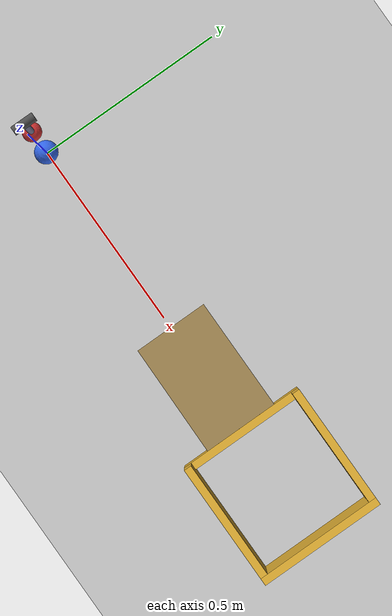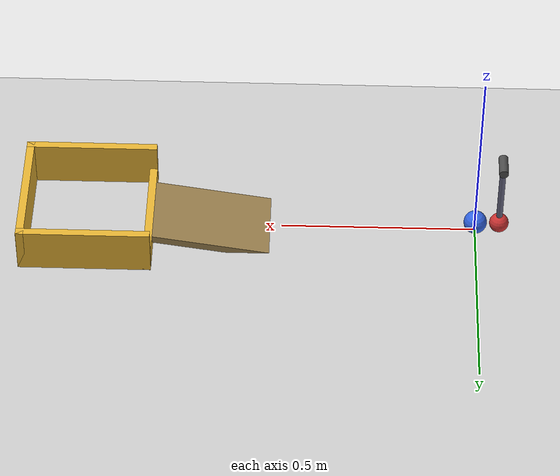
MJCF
<mujoco model="pendulum_ball_cup">
  <compiler angle="degree"/>
  <option timestep="0.002" gravity="0 0 -9.81"/>

  <worldbody>
    <light name="sun" pos="0.5 -1 3" dir="0 0.3 -1" directional="true"/>
    <geom name="floor" type="plane" size="3 3 0.1" rgba="0.8 0.8 0.8 1"/>

    <!-- visual-only pivot marker -->
    <geom name="pivot_marker" type="cylinder" pos="-0.061 0 0.23" euler="90 0 0" size="0.012 0.03" contype="0" conaffinity="0" rgba="0.3 0.3 0.3 1"/>

    <!-- pendulum: pivot 0.2 m above the bob's lowest point; bob bottom position touches ball at centre height -->
    <body name="pendulum" pos="-0.061 0 0.23">
      <joint name="pendulum_hinge" type="hinge" axis="0 1 0" pos="0 0 0"/>
      <geom name="pendulum_rod" type="capsule" fromto="0 0 0 0 0 -0.175" size="0.008" mass="0.05" rgba="0.4 0.4 0.5 1"/>
      <geom name="pendulum_bob" type="sphere" pos="0 0 -0.2" size="0.025" mass="1.0" rgba="0.8 0.2 0.2 1"/>
    </body>

    <!-- ball resting on the floor at the origin -->
    <body name="ball" pos="0 0 0.03">
      <freejoint name="ball_free"/>
      <geom name="ball" type="sphere" size="0.03" mass="0.1" rgba="0.2 0.4 0.9 1"/>
    </body>

    <!-- cup centred 1 m from the ball's start; interior is the floor between the walls -->
    <body name="cup" pos="1 0 0">
      <geom name="cup_ramp" type="box" pos="-0.3184 0 0.0151" euler="0 -9.46 0" size="0.1521 0.1 0.01" rgba="0.6 0.5 0.3 1"/>
      <geom name="cup_wall_near" type="box" pos="-0.16 0 0.025" size="0.01 0.17 0.025" rgba="0.9 0.7 0.2 1"/>
      <geom name="cup_wall_far" type="box" pos="0.16 0 0.06" size="0.01 0.17 0.06" rgba="0.9 0.7 0.2 1"/>
      <geom name="cup_wall_left" type="box" pos="0 0.16 0.06" size="0.17 0.01 0.06" rgba="0.9 0.7 0.2 1"/>
      <geom name="cup_wall_right" type="box" pos="0 -0.16 0.06" size="0.17 0.01 0.06" rgba="0.9 0.7 0.2 1"/>
    </body>
  </worldbody>

  <keyframe>
    <!-- pendulum held horizontal (bob at x = -0.261), ball at rest -->
    <key name="start" qpos="1.5708 0 0 0.03 1 0 0 0" qvel="0 0 0 0 0 0 0"/>
  </keyframe>
</mujoco>
